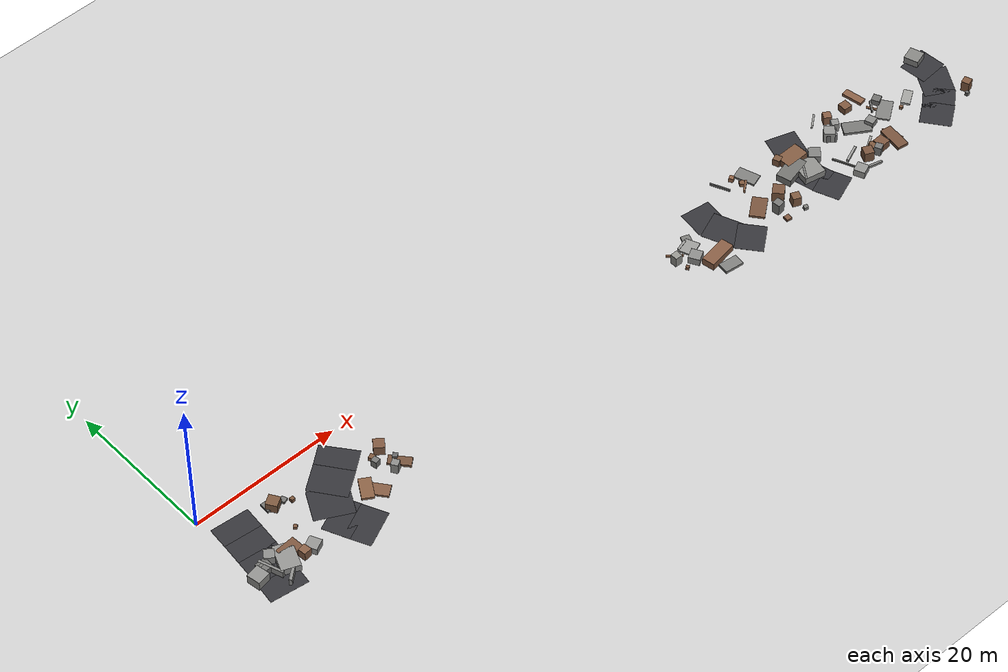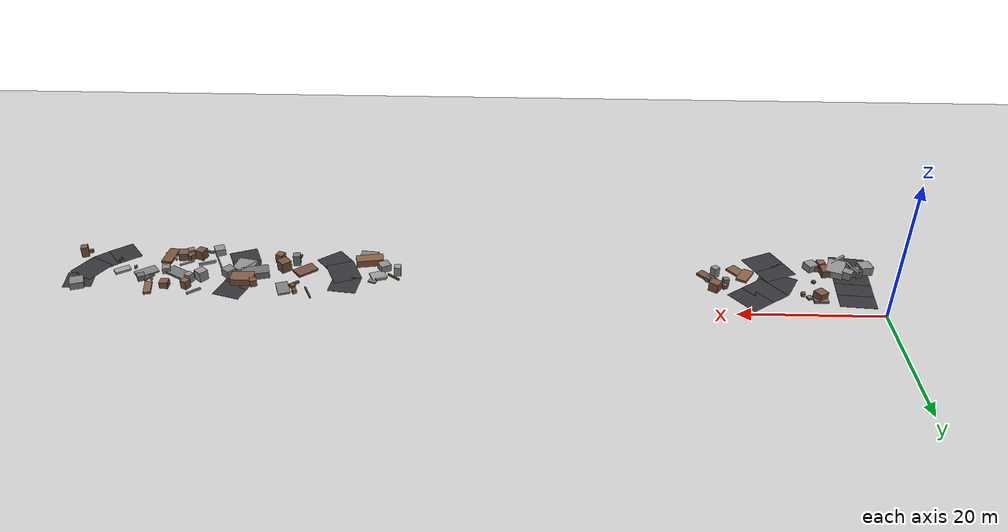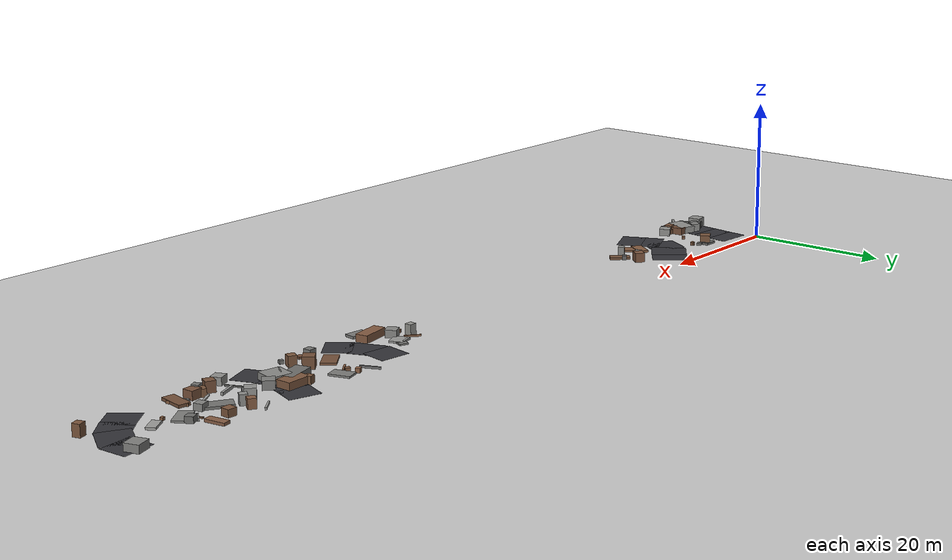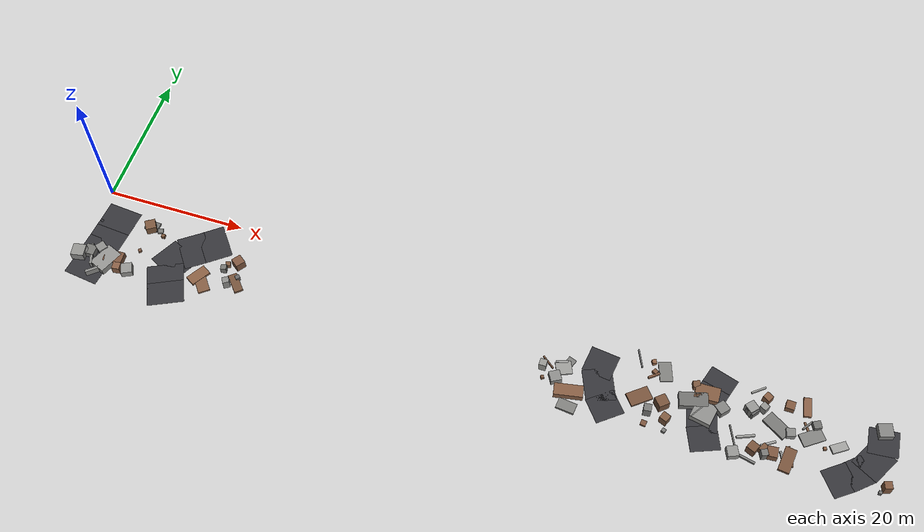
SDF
<sdf version="1.6">
 <world name="navitas_arena">
  <model name="ground_plane">
   <static>true</static>
   <link name="link">
    <collision name="collision">
     <geometry><plane><normal>0 0 1</normal><size>400 400</size></plane></geometry>
     <surface><friction><ode><mu>0.8</mu><mu2>0.8</mu2></ode></friction></surface>
    </collision>
    <visual name="visual">
     <cast_shadows>false</cast_shadows>
     <geometry><plane><normal>0 0 1</normal><size>400 400</size></plane></geometry>
     <material>
      <script><uri>file://media/materials/scripts/gazebo.material</uri><name>Gazebo/Grey</name></script>
     </material>
    </visual>
   </link>
  </model>
  <model name="road_orta_2_3">
   <static>true</static>
   <pose>2.092 -12.340 0.040 0 0 1.439</pose>
   <link name="link">
    <collision name="col"><geometry><box><size>3.765 5.000 0.020</size></box></geometry></collision>
    <visual name="vis">
     <geometry><box><size>3.765 5.000 0.020</size></box></geometry>
     <material><ambient>0.20 0.20 0.22 1</ambient><diffuse>0.20 0.20 0.22 1</diffuse></material>
    </visual>
   </link>
  </model>
  <model name="road_orta_2_4">
   <static>true</static>
   <pose>2.438 -9.460 0.040 0 0 1.464</pose>
   <link name="link">
    <collision name="col"><geometry><box><size>3.837 5.000 0.020</size></box></geometry></collision>
    <visual name="vis">
     <geometry><box><size>3.837 5.000 0.020</size></box></geometry>
     <material><ambient>0.20 0.20 0.22 1</ambient><diffuse>0.20 0.20 0.22 1</diffuse></material>
    </visual>
   </link>
  </model>
  <model name="road_orta_2_5">
   <static>true</static>
   <pose>2.729 -6.600 0.040 0 0 1.475</pose>
   <link name="link">
    <collision name="col"><geometry><box><size>3.713 5.000 0.020</size></box></geometry></collision>
    <visual name="vis">
     <geometry><box><size>3.713 5.000 0.020</size></box></geometry>
     <material><ambient>0.20 0.20 0.22 1</ambient><diffuse>0.20 0.20 0.22 1</diffuse></material>
    </visual>
   </link>
  </model>
  <model name="road_orta_2_6">
   <static>true</static>
   <pose>2.988 -3.800 0.040 0 0 1.482</pose>
   <link name="link">
    <collision name="col"><geometry><box><size>3.711 5.000 0.020</size></box></geometry></collision>
    <visual name="vis">
     <geometry><box><size>3.711 5.000 0.020</size></box></geometry>
     <material><ambient>0.20 0.20 0.22 1</ambient><diffuse>0.20 0.20 0.22 1</diffuse></material>
    </visual>
   </link>
  </model>
  <model name="road_orta_3_6">
   <static>true</static>
   <pose>14.112 -12.817 0.040 0 0 2.011</pose>
   <link name="link">
    <collision name="col"><geometry><box><size>3.466 5.000 0.020</size></box></geometry></collision>
    <visual name="vis">
     <geometry><box><size>3.466 5.000 0.020</size></box></geometry>
     <material><ambient>0.20 0.20 0.22 1</ambient><diffuse>0.20 0.20 0.22 1</diffuse></material>
    </visual>
   </link>
  </model>
  <model name="road_orta_3_7">
   <static>true</static>
   <pose>13.009 -10.426 0.040 0 0 1.995</pose>
   <link name="link">
    <collision name="col"><geometry><box><size>3.600 5.000 0.020</size></box></geometry></collision>
    <visual name="vis">
     <geometry><box><size>3.600 5.000 0.020</size></box></geometry>
     <material><ambient>0.20 0.20 0.22 1</ambient><diffuse>0.20 0.20 0.22 1</diffuse></material>
    </visual>
   </link>
  </model>
  <model name="road_orta_3_8">
   <static>true</static>
   <pose>13.226 -7.723 0.040 0 0 1.087</pose>
   <link name="link">
    <collision name="col"><geometry><box><size>4.227 5.000 0.020</size></box></geometry></collision>
    <visual name="vis">
     <geometry><box><size>4.227 5.000 0.020</size></box></geometry>
     <material><ambient>0.20 0.20 0.22 1</ambient><diffuse>0.20 0.20 0.22 1</diffuse></material>
    </visual>
   </link>
  </model>
  <model name="road_orta_3_9">
   <static>true</static>
   <pose>15.187 -5.375 0.040 0 0 0.635</pose>
   <link name="link">
    <collision name="col"><geometry><box><size>3.851 5.000 0.020</size></box></geometry></collision>
    <visual name="vis">
     <geometry><box><size>3.851 5.000 0.020</size></box></geometry>
     <material><ambient>0.20 0.20 0.22 1</ambient><diffuse>0.20 0.20 0.22 1</diffuse></material>
    </visual>
   </link>
  </model>
  <model name="road_orta_3_10">
   <static>true</static>
   <pose>17.510 -3.625 0.040 0 0 0.657</pose>
   <link name="link">
    <collision name="col"><geometry><box><size>3.766 5.000 0.020</size></box></geometry></collision>
    <visual name="vis">
     <geometry><box><size>3.766 5.000 0.020</size></box></geometry>
     <material><ambient>0.20 0.20 0.22 1</ambient><diffuse>0.20 0.20 0.22 1</diffuse></material>
    </visual>
   </link>
  </model>
  <model name="blk_orta_2_0_0">
   <static>true</static>
   <pose>0.240 -10.718 0.650 0 0 1.744</pose>
   <link name="link">
    <collision name="col"><geometry><box><size>1.791 1.791 1.300</size></box></geometry></collision>
    <visual name="vis">
     <geometry><box><size>1.791 1.791 1.300</size></box></geometry>
     <material><ambient>0.56 0.56 0.55 1</ambient><diffuse>0.56 0.56 0.55 1</diffuse></material>
    </visual>
   </link>
  </model>
  <model name="blk_orta_2_0_1">
   <static>true</static>
   <pose>2.128 -10.607 0.500 0 0 1.916</pose>
   <link name="link">
    <collision name="col"><geometry><box><size>3.275 0.329 1.000</size></box></geometry></collision>
    <visual name="vis">
     <geometry><box><size>3.275 0.329 1.000</size></box></geometry>
     <material><ambient>0.54 0.54 0.53 1</ambient><diffuse>0.54 0.54 0.53 1</diffuse></material>
    </visual>
   </link>
  </model>
  <model name="blk_orta_2_0_2">
   <static>true</static>
   <pose>5.247 -10.132 0.500 0 0 0.069</pose>
   <link name="link">
    <collision name="col"><geometry><box><size>2.642 1.810 1.000</size></box></geometry></collision>
    <visual name="vis">
     <geometry><box><size>2.642 1.810 1.000</size></box></geometry>
     <material><ambient>0.48 0.33 0.24 1</ambient><diffuse>0.48 0.33 0.24 1</diffuse></material>
    </visual>
   </link>
  </model>
  <model name="blk_orta_2_0_3">
   <static>true</static>
   <pose>2.987 -9.229 0.588 0 0 0.958</pose>
   <link name="link">
    <collision name="col"><geometry><box><size>1.280 1.280 1.176</size></box></geometry></collision>
    <visual name="vis">
     <geometry><box><size>1.280 1.280 1.176</size></box></geometry>
     <material><ambient>0.54 0.54 0.53 1</ambient><diffuse>0.54 0.54 0.53 1</diffuse></material>
    </visual>
   </link>
  </model>
  <model name="blk_orta_2_0_4">
   <static>true</static>
   <pose>1.656 -10.014 0.500 0 0 1.573</pose>
   <link name="link">
    <collision name="col"><geometry><box><size>1.514 1.514 1.000</size></box></geometry></collision>
    <visual name="vis">
     <geometry><box><size>1.514 1.514 1.000</size></box></geometry>
     <material><ambient>0.45 0.45 0.44 1</ambient><diffuse>0.45 0.45 0.44 1</diffuse></material>
    </visual>
   </link>
  </model>
  <model name="blk_orta_2_0_5">
   <static>true</static>
   <pose>4.323 -10.685 0.500 0 0 1.182</pose>
   <link name="link">
    <collision name="col"><geometry><box><size>3.537 2.409 1.000</size></box></geometry></collision>
    <visual name="vis">
     <geometry><box><size>3.537 2.409 1.000</size></box></geometry>
     <material><ambient>0.57 0.57 0.56 1</ambient><diffuse>0.57 0.57 0.56 1</diffuse></material>
    </visual>
   </link>
  </model>
  <model name="blk_orta_2_0_6">
   <static>true</static>
   <pose>1.259 -10.118 0.500 0 0 0.222</pose>
   <link name="link">
    <collision name="col"><geometry><box><size>0.955 0.955 1.000</size></box></geometry></collision>
    <visual name="vis">
     <geometry><box><size>0.955 0.955 1.000</size></box></geometry>
     <material><ambient>0.47 0.47 0.46 1</ambient><diffuse>0.47 0.47 0.46 1</diffuse></material>
    </visual>
   </link>
  </model>
  <model name="blk_orta_2_0_7">
   <static>true</static>
   <pose>3.765 -12.493 0.500 0 0 0.684</pose>
   <link name="link">
    <collision name="col"><geometry><box><size>3.207 0.377 1.000</size></box></geometry></collision>
    <visual name="vis">
     <geometry><box><size>3.207 0.377 1.000</size></box></geometry>
     <material><ambient>0.54 0.54 0.53 1</ambient><diffuse>0.54 0.54 0.53 1</diffuse></material>
    </visual>
   </link>
  </model>
  <model name="deb_orta_32">
   <static>true</static>
   <pose>21.656 -9.126 0.728 0 0 0.546</pose>
   <link name="link">
    <collision name="col"><geometry><box><size>0.914 0.914 1.457</size></box></geometry></collision>
    <visual name="vis">
     <geometry><box><size>0.914 0.914 1.457</size></box></geometry>
     <material><ambient>0.54 0.54 0.53 1</ambient><diffuse>0.54 0.54 0.53 1</diffuse></material>
    </visual>
   </link>
  </model>
  <model name="deb_orta_40">
   <static>true</static>
   <pose>8.018 -3.887 0.635 0 0 0.567</pose>
   <link name="link">
    <collision name="col"><geometry><box><size>1.447 1.447 1.270</size></box></geometry></collision>
    <visual name="vis">
     <geometry><box><size>1.447 1.447 1.270</size></box></geometry>
     <material><ambient>0.48 0.34 0.24 1</ambient><diffuse>0.48 0.34 0.24 1</diffuse></material>
    </visual>
   </link>
  </model>
  <model name="deb_orta_43">
   <static>true</static>
   <pose>22.771 -8.593 0.174 0 0 2.279</pose>
   <link name="link">
    <collision name="col"><geometry><box><size>2.859 1.223 0.348</size></box></geometry></collision>
    <visual name="vis">
     <geometry><box><size>2.859 1.223 0.348</size></box></geometry>
     <material><ambient>0.45 0.32 0.23 1</ambient><diffuse>0.45 0.32 0.23 1</diffuse></material>
    </visual>
   </link>
  </model>
  <model name="deb_orta_56">
   <static>true</static>
   <pose>20.686 -6.182 0.289 0 0 1.991</pose>
   <link name="link">
    <collision name="col"><geometry><box><size>0.694 0.694 0.578</size></box></geometry></collision>
    <visual name="vis">
     <geometry><box><size>0.694 0.694 0.578</size></box></geometry>
     <material><ambient>0.48 0.34 0.24 1</ambient><diffuse>0.48 0.34 0.24 1</diffuse></material>
    </visual>
   </link>
  </model>
  <model name="deb_orta_75">
   <static>true</static>
   <pose>7.698 -11.289 0.502 0 0 0.452</pose>
   <link name="link">
    <collision name="col"><geometry><box><size>1.559 1.559 1.003</size></box></geometry></collision>
    <visual name="vis">
     <geometry><box><size>1.559 1.559 1.003</size></box></geometry>
     <material><ambient>0.57 0.57 0.56 1</ambient><diffuse>0.57 0.57 0.56 1</diffuse></material>
    </visual>
   </link>
  </model>
  <model name="deb_orta_80">
   <static>true</static>
   <pose>9.416 -3.951 0.159 0 0 0.346</pose>
   <link name="link">
    <collision name="col"><geometry><box><size>0.714 0.714 0.319</size></box></geometry></collision>
    <visual name="vis">
     <geometry><box><size>0.714 0.714 0.319</size></box></geometry>
     <material><ambient>0.45 0.45 0.44 1</ambient><diffuse>0.45 0.45 0.44 1</diffuse></material>
    </visual>
   </link>
  </model>
  <model name="deb_orta_92">
   <static>true</static>
   <pose>22.117 -5.716 0.667 0 0 2.502</pose>
   <link name="link">
    <collision name="col"><geometry><box><size>1.371 1.371 1.334</size></box></geometry></collision>
    <visual name="vis">
     <geometry><box><size>1.371 1.371 1.334</size></box></geometry>
     <material><ambient>0.49 0.34 0.25 1</ambient><diffuse>0.49 0.34 0.25 1</diffuse></material>
    </visual>
   </link>
  </model>
  <model name="deb_orta_108">
   <static>true</static>
   <pose>18.416 -10.170 0.138 0 0 2.231</pose>
   <link name="link">
    <collision name="col"><geometry><box><size>2.408 1.632 0.277</size></box></geometry></collision>
    <visual name="vis">
     <geometry><box><size>2.408 1.632 0.277</size></box></geometry>
     <material><ambient>0.51 0.36 0.26 1</ambient><diffuse>0.51 0.36 0.26 1</diffuse></material>
    </visual>
   </link>
  </model>
  <model name="deb_orta_109">
   <static>true</static>
   <pose>6.915 -11.048 0.345 0 0 1.663</pose>
   <link name="link">
    <collision name="col"><geometry><box><size>0.798 0.798 0.689</size></box></geometry></collision>
    <visual name="vis">
     <geometry><box><size>0.798 0.798 0.689</size></box></geometry>
     <material><ambient>0.52 0.36 0.26 1</ambient><diffuse>0.52 0.36 0.26 1</diffuse></material>
    </visual>
   </link>
  </model>
  <model name="deb_orta_114">
   <static>true</static>
   <pose>22.751 -7.794 0.325 0 0 0.743</pose>
   <link name="link">
    <collision name="col"><geometry><box><size>0.618 0.618 0.649</size></box></geometry></collision>
    <visual name="vis">
     <geometry><box><size>0.618 0.618 0.649</size></box></geometry>
     <material><ambient>0.40 0.40 0.40 1</ambient><diffuse>0.40 0.40 0.40 1</diffuse></material>
    </visual>
   </link>
  </model>
  <model name="deb_orta_125">
   <static>true</static>
   <pose>7.998 -7.776 0.183 0 0 0.694</pose>
   <link name="link">
    <collision name="col"><geometry><box><size>0.458 0.458 0.365</size></box></geometry></collision>
    <visual name="vis">
     <geometry><box><size>0.458 0.458 0.365</size></box></geometry>
     <material><ambient>0.47 0.33 0.24 1</ambient><diffuse>0.47 0.33 0.24 1</diffuse></material>
    </visual>
   </link>
  </model>
  <model name="deb_orta_134">
   <static>true</static>
   <pose>7.991 -3.504 0.165 0 0 3.117</pose>
   <link name="link">
    <collision name="col"><geometry><box><size>1.978 1.373 0.330</size></box></geometry></collision>
    <visual name="vis">
     <geometry><box><size>1.978 1.373 0.330</size></box></geometry>
     <material><ambient>0.44 0.44 0.43 1</ambient><diffuse>0.44 0.44 0.43 1</diffuse></material>
    </visual>
   </link>
  </model>
  <model name="deb_orta_135">
   <static>true</static>
   <pose>6.315 -11.456 0.608 0 0 0.140</pose>
   <link name="link">
    <collision name="col"><geometry><box><size>1.057 1.057 1.216</size></box></geometry></collision>
    <visual name="vis">
     <geometry><box><size>1.057 1.057 1.216</size></box></geometry>
     <material><ambient>0.53 0.37 0.27 1</ambient><diffuse>0.53 0.37 0.27 1</diffuse></material>
    </visual>
   </link>
  </model>
  <model name="deb_orta_161">
   <static>true</static>
   <pose>10.174 -4.640 0.248 0 0 0.037</pose>
   <link name="link">
    <collision name="col"><geometry><box><size>0.494 0.494 0.497</size></box></geometry></collision>
    <visual name="vis">
     <geometry><box><size>0.494 0.494 0.497</size></box></geometry>
     <material><ambient>0.47 0.33 0.23 1</ambient><diffuse>0.47 0.33 0.23 1</diffuse></material>
    </visual>
   </link>
  </model>
  <model name="deb_orta_168">
   <static>true</static>
   <pose>17.385 -9.014 0.163 0 0 1.019</pose>
   <link name="link">
    <collision name="col"><geometry><box><size>2.879 1.546 0.325</size></box></geometry></collision>
    <visual name="vis">
     <geometry><box><size>2.879 1.546 0.325</size></box></geometry>
     <material><ambient>0.53 0.37 0.26 1</ambient><diffuse>0.53 0.37 0.26 1</diffuse></material>
    </visual>
   </link>
  </model>
  <model name="chic_orta_1">
   <static>true</static>
   <pose>20.444 -7.076 0.500 0 0 1.798</pose>
   <link name="link">
    <collision name="col"><geometry><box><size>0.781 0.781 1.000</size></box></geometry></collision>
    <visual name="vis">
     <geometry><box><size>0.781 0.781 1.000</size></box></geometry>
     <material><ambient>0.45 0.45 0.44 1</ambient><diffuse>0.45 0.45 0.44 1</diffuse></material>
    </visual>
   </link>
  </model>
  <model name="road_zor_1_5">
   <static>true</static>
   <pose>75.895 -11.124 0.040 0 0 2.244</pose>
   <link name="link">
    <collision name="col"><geometry><box><size>3.589 4.000 0.020</size></box></geometry></collision>
    <visual name="vis">
     <geometry><box><size>3.589 4.000 0.020</size></box></geometry>
     <material><ambient>0.20 0.20 0.22 1</ambient><diffuse>0.20 0.20 0.22 1</diffuse></material>
    </visual>
   </link>
  </model>
  <model name="road_zor_1_6">
   <static>true</static>
   <pose>74.352 -8.336 0.040 0 0 1.956</pose>
   <link name="link">
    <collision name="col"><geometry><box><size>4.647 4.000 0.020</size></box></geometry></collision>
    <visual name="vis">
     <geometry><box><size>4.647 4.000 0.020</size></box></geometry>
     <material><ambient>0.20 0.20 0.22 1</ambient><diffuse>0.20 0.20 0.22 1</diffuse></material>
    </visual>
   </link>
  </model>
  <model name="road_zor_1_7">
   <static>true</static>
   <pose>73.833 -5.200 0.040 0 0 1.440</pose>
   <link name="link">
    <collision name="col"><geometry><box><size>3.724 4.000 0.020</size></box></geometry></collision>
    <visual name="vis">
     <geometry><box><size>3.724 4.000 0.020</size></box></geometry>
     <material><ambient>0.20 0.20 0.22 1</ambient><diffuse>0.20 0.20 0.22 1</diffuse></material>
    </visual>
   </link>
  </model>
  <model name="road_zor_2_3">
   <static>true</static>
   <pose>89.137 -11.639 0.040 0 0 1.948</pose>
   <link name="link">
    <collision name="col"><geometry><box><size>3.510 4.000 0.020</size></box></geometry></collision>
    <visual name="vis">
     <geometry><box><size>3.510 4.000 0.020</size></box></geometry>
     <material><ambient>0.20 0.20 0.22 1</ambient><diffuse>0.20 0.20 0.22 1</diffuse></material>
    </visual>
   </link>
  </model>
  <model name="road_zor_2_4">
   <static>true</static>
   <pose>88.385 -9.213 0.040 0 0 1.790</pose>
   <link name="link">
    <collision name="col"><geometry><box><size>3.386 4.000 0.020</size></box></geometry></collision>
    <visual name="vis">
     <geometry><box><size>3.386 4.000 0.020</size></box></geometry>
     <material><ambient>0.20 0.20 0.22 1</ambient><diffuse>0.20 0.20 0.22 1</diffuse></material>
    </visual>
   </link>
  </model>
  <model name="road_zor_2_5">
   <static>true</static>
   <pose>88.591 -6.250 0.040 0 0 1.305</pose>
   <link name="link">
    <collision name="col"><geometry><box><size>4.528 4.000 0.020</size></box></geometry></collision>
    <visual name="vis">
     <geometry><box><size>4.528 4.000 0.020</size></box></geometry>
     <material><ambient>0.20 0.20 0.22 1</ambient><diffuse>0.20 0.20 0.22 1</diffuse></material>
    </visual>
   </link>
  </model>
  <model name="road_zor_2_6">
   <static>true</static>
   <pose>89.442 -3.333 0.040 0 0 1.261</pose>
   <link name="link">
    <collision name="col"><geometry><box><size>3.350 4.000 0.020</size></box></geometry></collision>
    <visual name="vis">
     <geometry><box><size>3.350 4.000 0.020</size></box></geometry>
     <material><ambient>0.20 0.20 0.22 1</ambient><diffuse>0.20 0.20 0.22 1</diffuse></material>
    </visual>
   </link>
  </model>
  <model name="road_zor_3_7">
   <static>true</static>
   <pose>106.860 -12.050 0.040 0 0 0.641</pose>
   <link name="link">
    <collision name="col"><geometry><box><size>3.583 4.000 0.020</size></box></geometry></collision>
    <visual name="vis">
     <geometry><box><size>3.583 4.000 0.020</size></box></geometry>
     <material><ambient>0.20 0.20 0.22 1</ambient><diffuse>0.20 0.20 0.22 1</diffuse></material>
    </visual>
   </link>
  </model>
  <model name="road_zor_3_8">
   <static>true</static>
   <pose>108.865 -10.426 0.040 0 0 0.724</pose>
   <link name="link">
    <collision name="col"><geometry><box><size>3.383 4.000 0.020</size></box></geometry></collision>
    <visual name="vis">
     <geometry><box><size>3.383 4.000 0.020</size></box></geometry>
     <material><ambient>0.20 0.20 0.22 1</ambient><diffuse>0.20 0.20 0.22 1</diffuse></material>
    </visual>
   </link>
  </model>
  <model name="road_zor_3_9">
   <static>true</static>
   <pose>110.644 -8.102 0.040 0 0 1.056</pose>
   <link name="link">
    <collision name="col"><geometry><box><size>4.351 4.000 0.020</size></box></geometry></collision>
    <visual name="vis">
     <geometry><box><size>4.351 4.000 0.020</size></box></geometry>
     <material><ambient>0.20 0.20 0.22 1</ambient><diffuse>0.20 0.20 0.22 1</diffuse></material>
    </visual>
   </link>
  </model>
  <model name="road_zor_3_10">
   <static>true</static>
   <pose>111.377 -5.200 0.040 0 0 1.654</pose>
   <link name="link">
    <collision name="col"><geometry><box><size>3.710 4.000 0.020</size></box></geometry></collision>
    <visual name="vis">
     <geometry><box><size>3.710 4.000 0.020</size></box></geometry>
     <material><ambient>0.20 0.20 0.22 1</ambient><diffuse>0.20 0.20 0.22 1</diffuse></material>
    </visual>
   </link>
  </model>
  <model name="blk_zor_2_0_0">
   <static>true</static>
   <pose>88.229 -5.559 0.500 0 0 0.021</pose>
   <link name="link">
    <collision name="col"><geometry><box><size>3.238 2.074 1.000</size></box></geometry></collision>
    <visual name="vis">
     <geometry><box><size>3.238 2.074 1.000</size></box></geometry>
     <material><ambient>0.50 0.35 0.25 1</ambient><diffuse>0.50 0.35 0.25 1</diffuse></material>
    </visual>
   </link>
  </model>
  <model name="blk_zor_2_0_1">
   <static>true</static>
   <pose>86.608 -4.744 0.500 0 0 0.335</pose>
   <link name="link">
    <collision name="col"><geometry><box><size>0.929 0.929 1.000</size></box></geometry></collision>
    <visual name="vis">
     <geometry><box><size>0.929 0.929 1.000</size></box></geometry>
     <material><ambient>0.48 0.34 0.24 1</ambient><diffuse>0.48 0.34 0.24 1</diffuse></material>
    </visual>
   </link>
  </model>
  <model name="blk_zor_2_0_2">
   <static>true</static>
   <pose>88.362 -8.382 0.500 0 0 2.941</pose>
   <link name="link">
    <collision name="col"><geometry><box><size>2.873 2.842 1.000</size></box></geometry></collision>
    <visual name="vis">
     <geometry><box><size>2.873 2.842 1.000</size></box></geometry>
     <material><ambient>0.55 0.55 0.54 1</ambient><diffuse>0.55 0.55 0.54 1</diffuse></material>
    </visual>
   </link>
  </model>
  <model name="blk_zor_2_0_3">
   <static>true</static>
   <pose>86.697 -7.046 0.500 0 0 0.257</pose>
   <link name="link">
    <collision name="col"><geometry><box><size>3.820 1.998 1.000</size></box></geometry></collision>
    <visual name="vis">
     <geometry><box><size>3.820 1.998 1.000</size></box></geometry>
     <material><ambient>0.44 0.44 0.43 1</ambient><diffuse>0.44 0.44 0.43 1</diffuse></material>
    </visual>
   </link>
  </model>
  <model name="blk_zor_2_0_4">
   <static>true</static>
   <pose>87.630 -8.277 0.500 0 0 0.979</pose>
   <link name="link">
    <collision name="col"><geometry><box><size>2.827 0.231 1.000</size></box></geometry></collision>
    <visual name="vis">
     <geometry><box><size>2.827 0.231 1.000</size></box></geometry>
     <material><ambient>0.50 0.50 0.49 1</ambient><diffuse>0.50 0.50 0.49 1</diffuse></material>
    </visual>
   </link>
  </model>
  <model name="blk_zor_2_0_5">
   <static>true</static>
   <pose>90.506 -7.117 0.566 0 0 2.414</pose>
   <link name="link">
    <collision name="col"><geometry><box><size>1.499 1.499 1.133</size></box></geometry></collision>
    <visual name="vis">
     <geometry><box><size>1.499 1.499 1.133</size></box></geometry>
     <material><ambient>0.50 0.50 0.49 1</ambient><diffuse>0.50 0.50 0.49 1</diffuse></material>
    </visual>
   </link>
  </model>
  <model name="blk_zor_3_1_4">
   <static>true</static>
   <pose>111.232 -3.811 0.500 0 0 0.321</pose>
   <link name="link">
    <collision name="col"><geometry><box><size>1.888 1.888 1.000</size></box></geometry></collision>
    <visual name="vis">
     <geometry><box><size>1.888 1.888 1.000</size></box></geometry>
     <material><ambient>0.51 0.51 0.50 1</ambient><diffuse>0.51 0.51 0.50 1</diffuse></material>
    </visual>
   </link>
  </model>
  <model name="deb_zor_11">
   <static>true</static>
   <pose>100.001 -11.425 0.190 0 0 1.441</pose>
   <link name="link">
    <collision name="col"><geometry><box><size>3.473 1.530 0.381</size></box></geometry></collision>
    <visual name="vis">
     <geometry><box><size>3.473 1.530 0.381</size></box></geometry>
     <material><ambient>0.46 0.32 0.23 1</ambient><diffuse>0.46 0.32 0.23 1</diffuse></material>
    </visual>
   </link>
  </model>
  <model name="deb_zor_13">
   <static>true</static>
   <pose>101.908 -6.668 0.077 0 0 2.117</pose>
   <link name="link">
    <collision name="col"><geometry><box><size>2.786 0.290 0.153</size></box></geometry></collision>
    <visual name="vis">
     <geometry><box><size>2.786 0.290 0.153</size></box></geometry>
     <material><ambient>0.48 0.34 0.24 1</ambient><diffuse>0.48 0.34 0.24 1</diffuse></material>
    </visual>
   </link>
  </model>
  <model name="deb_zor_33">
   <static>true</static>
   <pose>69.732 -6.787 0.102 0 0 1.206</pose>
   <link name="link">
    <collision name="col"><geometry><box><size>2.270 1.144 0.204</size></box></geometry></collision>
    <visual name="vis">
     <geometry><box><size>2.270 1.144 0.204</size></box></geometry>
     <material><ambient>0.47 0.47 0.46 1</ambient><diffuse>0.47 0.47 0.46 1</diffuse></material>
    </visual>
   </link>
  </model>
  <model name="deb_zor_36">
   <static>true</static>
   <pose>83.997 -12.242 0.226 0 0 2.821</pose>
   <link name="link">
    <collision name="col"><geometry><box><size>0.525 0.525 0.453</size></box></geometry></collision>
    <visual name="vis">
     <geometry><box><size>0.525 0.525 0.453</size></box></geometry>
     <material><ambient>0.47 0.47 0.46 1</ambient><diffuse>0.47 0.47 0.46 1</diffuse></material>
    </visual>
   </link>
  </model>
  <model name="deb_zor_50">
   <static>true</static>
   <pose>97.885 -11.247 0.565 0 0 0.072</pose>
   <link name="link">
    <collision name="col"><geometry><box><size>1.437 1.437 1.129</size></box></geometry></collision>
    <visual name="vis">
     <geometry><box><size>1.437 1.437 1.129</size></box></geometry>
     <material><ambient>0.48 0.33 0.24 1</ambient><diffuse>0.48 0.33 0.24 1</diffuse></material>
    </visual>
   </link>
  </model>
  <model name="deb_zor_55">
   <static>true</static>
   <pose>100.344 -10.808 0.179 0 0 1.907</pose>
   <link name="link">
    <collision name="col"><geometry><box><size>2.807 0.151 0.357</size></box></geometry></collision>
    <visual name="vis">
     <geometry><box><size>2.807 0.151 0.357</size></box></geometry>
     <material><ambient>0.53 0.37 0.26 1</ambient><diffuse>0.53 0.37 0.26 1</diffuse></material>
    </visual>
   </link>
  </model>
  <model name="deb_zor_78">
   <static>true</static>
   <pose>94.593 -2.804 0.152 0 0 0.672</pose>
   <link name="link">
    <collision name="col"><geometry><box><size>2.105 0.218 0.305</size></box></geometry></collision>
    <visual name="vis">
     <geometry><box><size>2.105 0.218 0.305</size></box></geometry>
     <material><ambient>0.60 0.60 0.59 1</ambient><diffuse>0.60 0.60 0.59 1</diffuse></material>
    </visual>
   </link>
  </model>
  <model name="deb_zor_82">
   <static>true</static>
   <pose>102.727 -5.655 0.404 0 0 0.464</pose>
   <link name="link">
    <collision name="col"><geometry><box><size>1.044 1.044 0.808</size></box></geometry></collision>
    <visual name="vis">
     <geometry><box><size>1.044 1.044 0.808</size></box></geometry>
     <material><ambient>0.43 0.43 0.42 1</ambient><diffuse>0.43 0.43 0.42 1</diffuse></material>
    </visual>
   </link>
  </model>
  <model name="deb_zor_84">
   <static>true</static>
   <pose>96.938 -11.717 0.641 0 0 2.007</pose>
   <link name="link">
    <collision name="col"><geometry><box><size>0.903 0.903 1.282</size></box></geometry></collision>
    <visual name="vis">
     <geometry><box><size>0.903 0.903 1.282</size></box></geometry>
     <material><ambient>0.46 0.46 0.45 1</ambient><diffuse>0.46 0.46 0.45 1</diffuse></material>
    </visual>
   </link>
  </model>
  <model name="deb_zor_91">
   <static>true</static>
   <pose>68.589 -9.224 0.507 0 0 0.519</pose>
   <link name="link">
    <collision name="col"><geometry><box><size>1.487 1.487 1.014</size></box></geometry></collision>
    <visual name="vis">
     <geometry><box><size>1.487 1.487 1.014</size></box></geometry>
     <material><ambient>0.54 0.54 0.53 1</ambient><diffuse>0.54 0.54 0.53 1</diffuse></material>
    </visual>
   </link>
  </model>
  <model name="deb_zor_92">
   <static>true</static>
   <pose>82.305 -3.880 0.127 0 0 1.892</pose>
   <link name="link">
    <collision name="col"><geometry><box><size>2.804 1.705 0.254</size></box></geometry></collision>
    <visual name="vis">
     <geometry><box><size>2.804 1.705 0.254</size></box></geometry>
     <material><ambient>0.49 0.49 0.48 1</ambient><diffuse>0.49 0.49 0.48 1</diffuse></material>
    </visual>
   </link>
  </model>
  <model name="deb_zor_96">
   <static>true</static>
   <pose>80.982 -4.917 0.193 0 0 0.668</pose>
   <link name="link">
    <collision name="col"><geometry><box><size>1.702 0.250 0.386</size></box></geometry></collision>
    <visual name="vis">
     <geometry><box><size>1.702 0.250 0.386</size></box></geometry>
     <material><ambient>0.53 0.37 0.27 1</ambient><diffuse>0.53 0.37 0.27 1</diffuse></material>
    </visual>
   </link>
  </model>
  <model name="deb_zor_99">
   <static>true</static>
   <pose>99.645 -7.739 0.433 0 0 0.268</pose>
   <link name="link">
    <collision name="col"><geometry><box><size>1.161 1.161 0.866</size></box></geometry></collision>
    <visual name="vis">
     <geometry><box><size>1.161 1.161 0.866</size></box></geometry>
     <material><ambient>0.52 0.52 0.51 1</ambient><diffuse>0.52 0.52 0.51 1</diffuse></material>
    </visual>
   </link>
  </model>
  <model name="deb_zor_101">
   <static>true</static>
   <pose>79.825 -8.427 0.153 0 0 0.670</pose>
   <link name="link">
    <collision name="col"><geometry><box><size>3.077 1.926 0.305</size></box></geometry></collision>
    <visual name="vis">
     <geometry><box><size>3.077 1.926 0.305</size></box></geometry>
     <material><ambient>0.46 0.32 0.23 1</ambient><diffuse>0.46 0.32 0.23 1</diffuse></material>
    </visual>
   </link>
  </model>
  <model name="deb_zor_106">
   <static>true</static>
   <pose>101.616 -5.890 0.176 0 0 0.947</pose>
   <link name="link">
    <collision name="col"><geometry><box><size>1.722 0.226 0.353</size></box></geometry></collision>
    <visual name="vis">
     <geometry><box><size>1.722 0.226 0.353</size></box></geometry>
     <material><ambient>0.46 0.46 0.45 1</ambient><diffuse>0.46 0.46 0.45 1</diffuse></material>
    </visual>
   </link>
  </model>
  <model name="deb_zor_107">
   <static>true</static>
   <pose>95.905 -3.858 0.626 0 0 1.038</pose>
   <link name="link">
    <collision name="col"><geometry><box><size>1.005 1.005 1.251</size></box></geometry></collision>
    <visual name="vis">
     <geometry><box><size>1.005 1.005 1.251</size></box></geometry>
     <material><ambient>0.52 0.36 0.26 1</ambient><diffuse>0.52 0.36 0.26 1</diffuse></material>
    </visual>
   </link>
  </model>
  <model name="deb_zor_109">
   <static>true</static>
   <pose>94.237 -9.793 0.186 0 0 0.391</pose>
   <link name="link">
    <collision name="col"><geometry><box><size>2.455 0.299 0.371</size></box></geometry></collision>
    <visual name="vis">
     <geometry><box><size>2.455 0.299 0.371</size></box></geometry>
     <material><ambient>0.60 0.60 0.59 1</ambient><diffuse>0.60 0.60 0.59 1</diffuse></material>
    </visual>
   </link>
  </model>
  <model name="deb_zor_110">
   <static>true</static>
   <pose>106.009 -7.694 0.149 0 0 0.587</pose>
   <link name="link">
    <collision name="col"><geometry><box><size>2.224 1.171 0.297</size></box></geometry></collision>
    <visual name="vis">
     <geometry><box><size>2.224 1.171 0.297</size></box></geometry>
     <material><ambient>0.62 0.62 0.61 1</ambient><diffuse>0.62 0.62 0.61 1</diffuse></material>
    </visual>
   </link>
  </model>
  <model name="deb_zor_118">
   <static>true</static>
   <pose>111.919 -12.289 0.265 0 0 1.526</pose>
   <link name="link">
    <collision name="col"><geometry><box><size>0.420 0.420 0.529</size></box></geometry></collision>
    <visual name="vis">
     <geometry><box><size>0.420 0.420 0.529</size></box></geometry>
     <material><ambient>0.43 0.43 0.42 1</ambient><diffuse>0.43 0.43 0.42 1</diffuse></material>
    </visual>
   </link>
  </model>
  <model name="deb_zor_119">
   <static>true</static>
   <pose>95.740 -5.367 0.654 0 0 2.602</pose>
   <link name="link">
    <collision name="col"><geometry><box><size>0.935 0.935 1.309</size></box></geometry></collision>
    <visual name="vis">
     <geometry><box><size>0.935 0.935 1.309</size></box></geometry>
     <material><ambient>0.56 0.56 0.55 1</ambient><diffuse>0.56 0.56 0.55 1</diffuse></material>
    </visual>
   </link>
  </model>
  <model name="deb_zor_120">
   <static>true</static>
   <pose>98.930 -3.995 0.477 0 0 3.103</pose>
   <link name="link">
    <collision name="col"><geometry><box><size>1.189 1.189 0.954</size></box></geometry></collision>
    <visual name="vis">
     <geometry><box><size>1.189 1.189 0.954</size></box></geometry>
     <material><ambient>0.49 0.34 0.24 1</ambient><diffuse>0.49 0.34 0.24 1</diffuse></material>
    </visual>
   </link>
  </model>
  <model name="deb_zor_130">
   <static>true</static>
   <pose>95.376 -11.404 0.715 0 0 1.134</pose>
   <link name="link">
    <collision name="col"><geometry><box><size>1.257 1.257 1.430</size></box></geometry></collision>
    <visual name="vis">
     <geometry><box><size>1.257 1.257 1.430</size></box></geometry>
     <material><ambient>0.46 0.32 0.23 1</ambient><diffuse>0.46 0.32 0.23 1</diffuse></material>
    </visual>
   </link>
  </model>
  <model name="deb_zor_131">
   <static>true</static>
   <pose>78.677 -2.960 0.150 0 0 1.993</pose>
   <link name="link">
    <collision name="col"><geometry><box><size>2.638 0.167 0.300</size></box></geometry></collision>
    <visual name="vis">
     <geometry><box><size>2.638 0.167 0.300</size></box></geometry>
     <material><ambient>0.43 0.43 0.43 1</ambient><diffuse>0.43 0.43 0.43 1</diffuse></material>
    </visual>
   </link>
  </model>
  <model name="deb_zor_133">
   <static>true</static>
   <pose>69.316 -7.423 0.118 0 0 1.973</pose>
   <link name="link">
    <collision name="col"><geometry><box><size>1.857 2.121 0.236</size></box></geometry></collision>
    <visual name="vis">
     <geometry><box><size>1.857 2.121 0.236</size></box></geometry>
     <material><ambient>0.60 0.60 0.59 1</ambient><diffuse>0.60 0.60 0.59 1</diffuse></material>
    </visual>
   </link>
  </model>
  <model name="deb_zor_136">
   <static>true</static>
   <pose>102.452 -7.325 0.114 0 0 0.620</pose>
   <link name="link">
    <collision name="col"><geometry><box><size>3.116 1.818 0.227</size></box></geometry></collision>
    <visual name="vis">
     <geometry><box><size>3.116 1.818 0.227</size></box></geometry>
     <material><ambient>0.50 0.50 0.49 1</ambient><diffuse>0.50 0.50 0.49 1</diffuse></material>
    </visual>
   </link>
  </model>
  <model name="deb_zor_139">
   <static>true</static>
   <pose>66.947 -9.602 0.212 0 0 0.513</pose>
   <link name="link">
    <collision name="col"><geometry><box><size>0.430 0.430 0.424</size></box></geometry></collision>
    <visual name="vis">
     <geometry><box><size>0.430 0.430 0.424</size></box></geometry>
     <material><ambient>0.46 0.32 0.23 1</ambient><diffuse>0.46 0.32 0.23 1</diffuse></material>
    </visual>
   </link>
  </model>
  <model name="deb_zor_140">
   <static>true</static>
   <pose>101.150 -3.340 0.187 0 0 1.744</pose>
   <link name="link">
    <collision name="col"><geometry><box><size>2.707 1.005 0.373</size></box></geometry></collision>
    <visual name="vis">
     <geometry><box><size>2.707 1.005 0.373</size></box></geometry>
     <material><ambient>0.53 0.37 0.27 1</ambient><diffuse>0.53 0.37 0.27 1</diffuse></material>
    </visual>
   </link>
  </model>
  <model name="deb_zor_144">
   <static>true</static>
   <pose>80.550 -3.019 0.302 0 0 0.475</pose>
   <link name="link">
    <collision name="col"><geometry><box><size>0.580 0.580 0.604</size></box></geometry></collision>
    <visual name="vis">
     <geometry><box><size>0.580 0.580 0.604</size></box></geometry>
     <material><ambient>0.55 0.38 0.27 1</ambient><diffuse>0.55 0.38 0.27 1</diffuse></material>
    </visual>
   </link>
  </model>
  <model name="deb_zor_145">
   <static>true</static>
   <pose>104.291 -8.424 0.188 0 0 1.914</pose>
   <link name="link">
    <collision name="col"><geometry><box><size>0.413 0.413 0.377</size></box></geometry></collision>
    <visual name="vis">
     <geometry><box><size>0.413 0.413 0.377</size></box></geometry>
     <material><ambient>0.53 0.37 0.26 1</ambient><diffuse>0.53 0.37 0.26 1</diffuse></material>
    </visual>
   </link>
  </model>
  <model name="deb_zor_147">
   <static>true</static>
   <pose>68.834 -6.599 0.143 0 0 0.294</pose>
   <link name="link">
    <collision name="col"><geometry><box><size>1.602 0.292 0.286</size></box></geometry></collision>
    <visual name="vis">
     <geometry><box><size>1.602 0.292 0.286</size></box></geometry>
     <material><ambient>0.59 0.59 0.58 1</ambient><diffuse>0.59 0.59 0.58 1</diffuse></material>
    </visual>
   </link>
  </model>
  <model name="deb_zor_148">
   <static>true</static>
   <pose>81.284 -10.260 0.792 0 0 0.103</pose>
   <link name="link">
    <collision name="col"><geometry><box><size>1.034 1.034 1.585</size></box></geometry></collision>
    <visual name="vis">
     <geometry><box><size>1.034 1.034 1.585</size></box></geometry>
     <material><ambient>0.46 0.46 0.45 1</ambient><diffuse>0.46 0.46 0.45 1</diffuse></material>
    </visual>
   </link>
  </model>
  <model name="deb_zor_155">
   <static>true</static>
   <pose>97.233 -9.850 0.093 0 0 0.568</pose>
   <link name="link">
    <collision name="col"><geometry><box><size>2.103 0.291 0.186</size></box></geometry></collision>
    <visual name="vis">
     <geometry><box><size>2.103 0.291 0.186</size></box></geometry>
     <material><ambient>0.62 0.62 0.61 1</ambient><diffuse>0.62 0.62 0.61 1</diffuse></material>
    </visual>
   </link>
  </model>
  <model name="deb_zor_157">
   <static>true</static>
   <pose>93.021 -12.633 0.502 0 0 1.973</pose>
   <link name="link">
    <collision name="col"><geometry><box><size>1.446 1.446 1.003</size></box></geometry></collision>
    <visual name="vis">
     <geometry><box><size>1.446 1.446 1.003</size></box></geometry>
     <material><ambient>0.57 0.57 0.56 1</ambient><diffuse>0.57 0.57 0.56 1</diffuse></material>
    </visual>
   </link>
  </model>
  <model name="deb_zor_159">
   <static>true</static>
   <pose>67.131 -7.195 0.124 0 0 2.467</pose>
   <link name="link">
    <collision name="col"><geometry><box><size>2.137 0.173 0.249</size></box></geometry></collision>
    <visual name="vis">
     <geometry><box><size>2.137 0.173 0.249</size></box></geometry>
     <material><ambient>0.54 0.38 0.27 1</ambient><diffuse>0.54 0.38 0.27 1</diffuse></material>
    </visual>
   </link>
  </model>
  <model name="deb_zor_160">
   <static>true</static>
   <pose>95.036 -12.850 0.166 0 0 2.901</pose>
   <link name="link">
    <collision name="col"><geometry><box><size>2.232 0.282 0.331</size></box></geometry></collision>
    <visual name="vis">
     <geometry><box><size>2.232 0.282 0.331</size></box></geometry>
     <material><ambient>0.50 0.50 0.49 1</ambient><diffuse>0.50 0.50 0.49 1</diffuse></material>
    </visual>
   </link>
  </model>
  <model name="deb_zor_162">
   <static>true</static>
   <pose>82.839 -8.722 0.776 0 0 2.273</pose>
   <link name="link">
    <collision name="col"><geometry><box><size>1.509 1.509 1.553</size></box></geometry></collision>
    <visual name="vis">
     <geometry><box><size>1.509 1.509 1.553</size></box></geometry>
     <material><ambient>0.46 0.32 0.23 1</ambient><diffuse>0.46 0.32 0.23 1</diffuse></material>
    </visual>
   </link>
  </model>
  <model name="deb_zor_168">
   <static>true</static>
   <pose>80.997 -4.348 0.233 0 0 1.014</pose>
   <link name="link">
    <collision name="col"><geometry><box><size>0.627 0.627 0.466</size></box></geometry></collision>
    <visual name="vis">
     <geometry><box><size>0.627 0.627 0.466</size></box></geometry>
     <material><ambient>0.49 0.34 0.24 1</ambient><diffuse>0.49 0.34 0.24 1</diffuse></material>
    </visual>
   </link>
  </model>
  <model name="deb_zor_171">
   <static>true</static>
   <pose>97.849 -7.111 0.165 0 0 2.579</pose>
   <link name="link">
    <collision name="col"><geometry><box><size>3.557 1.789 0.330</size></box></geometry></collision>
    <visual name="vis">
     <geometry><box><size>3.557 1.789 0.330</size></box></geometry>
     <material><ambient>0.46 0.46 0.45 1</ambient><diffuse>0.46 0.46 0.45 1</diffuse></material>
    </visual>
   </link>
  </model>
  <model name="deb_zor_172">
   <static>true</static>
   <pose>92.574 -10.111 0.097 0 0 1.984</pose>
   <link name="link">
    <collision name="col"><geometry><box><size>2.916 0.180 0.195</size></box></geometry></collision>
    <visual name="vis">
     <geometry><box><size>2.916 0.180 0.195</size></box></geometry>
     <material><ambient>0.40 0.40 0.39 1</ambient><diffuse>0.40 0.40 0.39 1</diffuse></material>
    </visual>
   </link>
  </model>
  <model name="deb_zor_174">
   <static>true</static>
   <pose>66.582 -8.020 0.707 0 0 3.132</pose>
   <link name="link">
    <collision name="col"><geometry><box><size>0.965 0.965 1.414</size></box></geometry></collision>
    <visual name="vis">
     <geometry><box><size>0.965 0.965 1.414</size></box></geometry>
     <material><ambient>0.58 0.58 0.56 1</ambient><diffuse>0.58 0.58 0.56 1</diffuse></material>
    </visual>
   </link>
  </model>
  <model name="deb_zor_181">
   <static>true</static>
   <pose>112.556 -11.502 0.768 0 0 1.891</pose>
   <link name="link">
    <collision name="col"><geometry><box><size>1.016 1.016 1.536</size></box></geometry></collision>
    <visual name="vis">
     <geometry><box><size>1.016 1.016 1.536</size></box></geometry>
     <material><ambient>0.49 0.34 0.24 1</ambient><diffuse>0.49 0.34 0.24 1</diffuse></material>
    </visual>
   </link>
  </model>
  <model name="deb_zor_189">
   <static>true</static>
   <pose>96.911 -11.067 0.487 0 0 1.060</pose>
   <link name="link">
    <collision name="col"><geometry><box><size>1.179 1.179 0.973</size></box></geometry></collision>
    <visual name="vis">
     <geometry><box><size>1.179 1.179 0.973</size></box></geometry>
     <material><ambient>0.48 0.34 0.24 1</ambient><diffuse>0.48 0.34 0.24 1</diffuse></material>
    </visual>
   </link>
  </model>
  <model name="deb_zor_192">
   <static>true</static>
   <pose>81.267 -11.960 0.156 0 0 3.021</pose>
   <link name="link">
    <collision name="col"><geometry><box><size>0.754 0.754 0.313</size></box></geometry></collision>
    <visual name="vis">
     <geometry><box><size>0.754 0.754 0.313</size></box></geometry>
     <material><ambient>0.48 0.33 0.24 1</ambient><diffuse>0.48 0.33 0.24 1</diffuse></material>
    </visual>
   </link>
  </model>
  <model name="deb_zor_198">
   <static>true</static>
   <pose>71.093 -12.671 0.176 0 0 3.030</pose>
   <link name="link">
    <collision name="col"><geometry><box><size>2.511 1.487 0.352</size></box></geometry></collision>
    <visual name="vis">
     <geometry><box><size>2.511 1.487 0.352</size></box></geometry>
     <material><ambient>0.49 0.49 0.48 1</ambient><diffuse>0.49 0.49 0.48 1</diffuse></material>
    </visual>
   </link>
  </model>
  <model name="deb_zor_199">
   <static>true</static>
   <pose>94.156 -6.000 0.750 0 0 2.400</pose>
   <link name="link">
    <collision name="col"><geometry><box><size>1.363 1.363 1.500</size></box></geometry></collision>
    <visual name="vis">
     <geometry><box><size>1.363 1.363 1.500</size></box></geometry>
     <material><ambient>0.57 0.57 0.56 1</ambient><diffuse>0.57 0.57 0.56 1</diffuse></material>
    </visual>
   </link>
  </model>
  <model name="deb_zor_201">
   <static>true</static>
   <pose>83.732 -10.770 0.685 0 0 2.735</pose>
   <link name="link">
    <collision name="col"><geometry><box><size>1.091 1.091 1.369</size></box></geometry></collision>
    <visual name="vis">
     <geometry><box><size>1.091 1.091 1.369</size></box></geometry>
     <material><ambient>0.49 0.35 0.25 1</ambient><diffuse>0.49 0.35 0.25 1</diffuse></material>
    </visual>
   </link>
  </model>
  <model name="deb_zor_203">
   <static>true</static>
   <pose>94.333 -6.189 0.593 0 0 0.923</pose>
   <link name="link">
    <collision name="col"><geometry><box><size>1.296 1.296 1.187</size></box></geometry></collision>
    <visual name="vis">
     <geometry><box><size>1.296 1.296 1.187</size></box></geometry>
     <material><ambient>0.42 0.42 0.42 1</ambient><diffuse>0.42 0.42 0.42 1</diffuse></material>
    </visual>
   </link>
  </model>
  <model name="deb_zor_205">
   <static>true</static>
   <pose>99.409 -11.601 0.172 0 0 1.991</pose>
   <link name="link">
    <collision name="col"><geometry><box><size>2.375 0.255 0.344</size></box></geometry></collision>
    <visual name="vis">
     <geometry><box><size>2.375 0.255 0.344</size></box></geometry>
     <material><ambient>0.54 0.54 0.53 1</ambient><diffuse>0.54 0.54 0.53 1</diffuse></material>
    </visual>
   </link>
  </model>
  <model name="chic_zor_0">
   <static>true</static>
   <pose>70.814 -10.704 0.500 0 0 0.178</pose>
   <link name="link">
    <collision name="col"><geometry><box><size>3.896 1.664 1.000</size></box></geometry></collision>
    <visual name="vis">
     <geometry><box><size>3.896 1.664 1.000</size></box></geometry>
     <material><ambient>0.52 0.36 0.26 1</ambient><diffuse>0.52 0.36 0.26 1</diffuse></material>
    </visual>
   </link>
  </model>
 </world>
</sdf>
